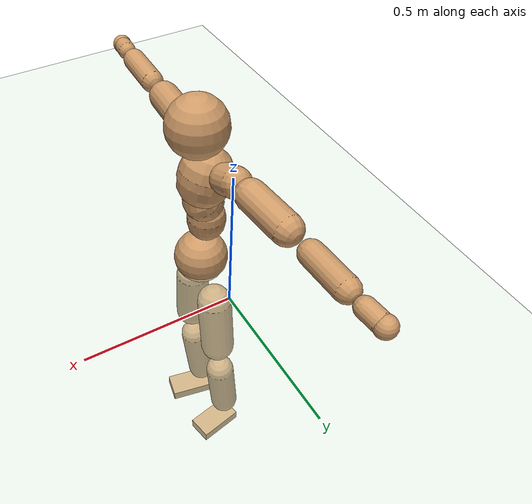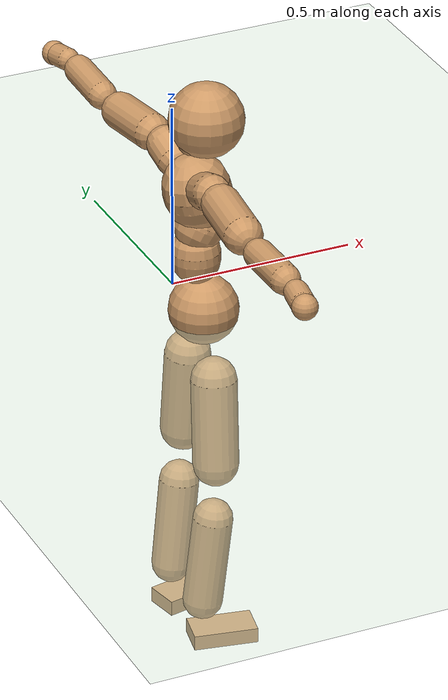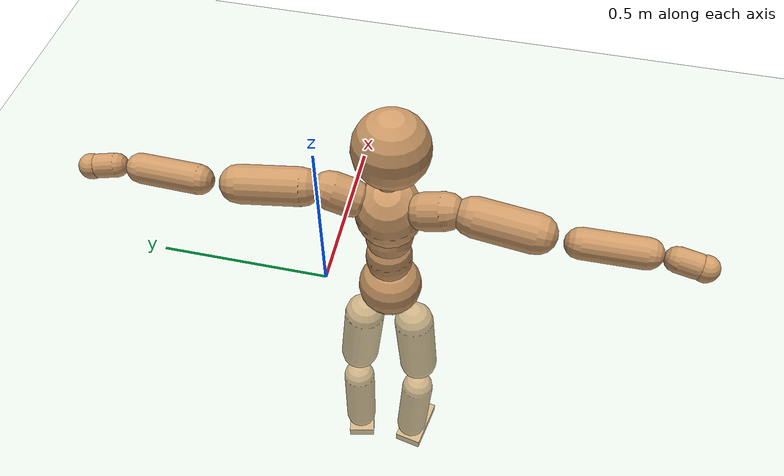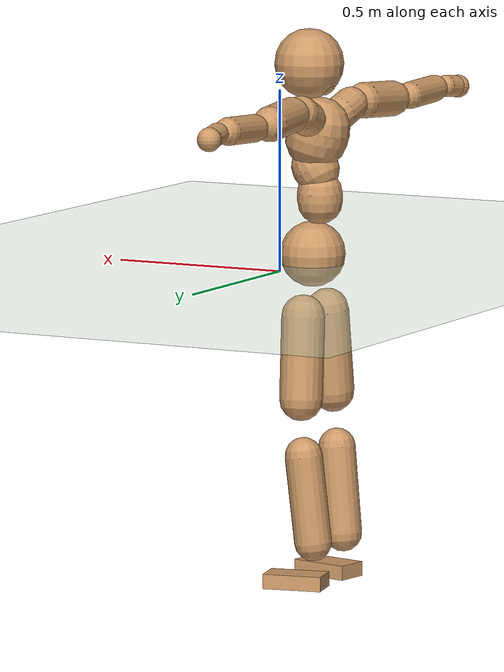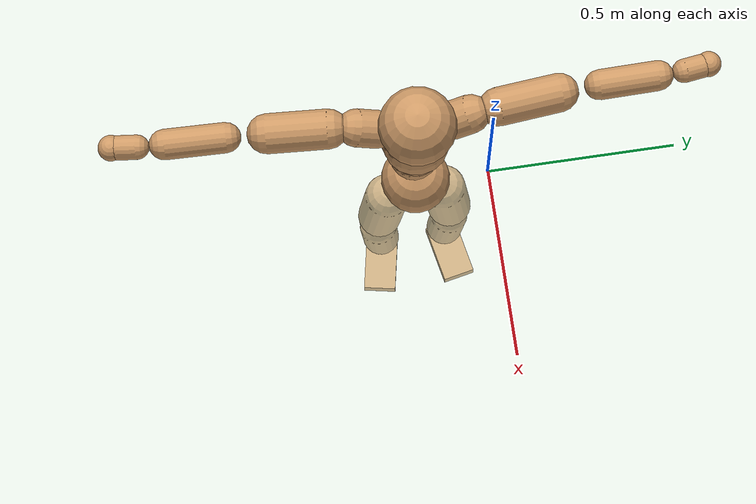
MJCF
<mujoco model="humanoid">
  <compiler coordinate="local"/>
  <default>
    <joint damping="0.0" armature="0.01" stiffness="0.0" limited="true"/>
    <geom conaffinity="1" condim="3" contype="7" margin="0.001" rgba="0.8 0.6 .4 1"/>
  </default>
  <asset>
    <texture type="skybox" builtin="gradient" rgb1=".4 .5 .6" rgb2="0 0 0" width="100" height="100"/>
    <texture builtin="flat" height="1278" mark="cross" markrgb="1 1 1" name="texgeom" random="0.01" rgb1="0.8 0.6 0.4" rgb2="0.8 0.6 0.4" type="cube" width="127"/>
    <texture builtin="checker" height="100" name="texplane" rgb1="0 0 0" rgb2="0.8 0.8 0.8" type="2d" width="100"/>
    <material name="MatPlane" reflectance="0.5" shininess="1" specular="1" texrepeat="60 60" texture="texplane"/>
    <material name="geom" texture="texgeom" texuniform="true"/>
  </asset>
  <worldbody>
    <light cutoff="100" diffuse="1 1 1" dir="-0 0 -1.3" directional="true" exponent="1" pos="0 0 1.3" specular=".1 .1 .1"/>
    <geom conaffinity="1" condim="3" name="floor" pos="0 0 0" rgba="0.8 0.9 0.8 1" size="100 100 .2" type="plane" material="MatPlane"/>
    <body name="Pelvis" pos="-0.0011 -0.1938 0.0262">
      <freejoint name="Pelvis"/>
      <geom type="sphere" contype="1" conaffinity="1" density="500" size="0.0913" pos="0.0000 0.0000 0.0000" name="Pelvis"/>
      <body name="L_Hip" pos="-0.0085 0.07 -0.0882">
        <joint name="L_Hip_x" type="hinge" pos="0 0 0" axis="1 0 0" stiffness="800" damping="80" armature="0.02" range="-180.0000 180.0000"/>
        <joint name="L_Hip_y" type="hinge" pos="0 0 0" axis="0 1 0" stiffness="800" damping="80" armature="0.02" range="-180.0000 180.0000"/>
        <joint name="L_Hip_z" type="hinge" pos="0 0 0" axis="0 0 1" stiffness="800" damping="80" armature="0.02" range="-180.0000 180.0000"/>
        <geom type="capsule" contype="1" conaffinity="1" density="500" fromto="-0.0013 0.0067 -0.0764 -0.0053 0.0267 -0.3054" size="0.0603" name="L_Hip"/>
        <body name="L_Knee" pos="-0.0066 0.0334 -0.3818">
          <joint name="L_Knee_x" type="hinge" pos="0 0 0" axis="1 0 0" stiffness="800" damping="80" armature="0.02" range="-180.0000 180.0000"/>
          <joint name="L_Knee_y" type="hinge" pos="0 0 0" axis="0 1 0" stiffness="800" damping="80" armature="0.02" range="-180.0000 180.0000"/>
          <joint name="L_Knee_z" type="hinge" pos="0 0 0" axis="0 0 1" stiffness="800" damping="80" armature="0.02" range="-180.0000 180.0000"/>
          <geom type="capsule" contype="1" conaffinity="1" density="500" fromto="-0.0088 -0.0023 -0.0809 -0.0350 -0.0094 -0.3237" size="0.052" name="L_Knee"/>
          <body name="L_Ankle" pos="-0.0438 -0.0117 -0.4046">
            <joint name="L_Ankle_x" type="hinge" pos="0 0 0" axis="1 0 0" stiffness="800" damping="80" armature="0.02" range="-180.0000 180.0000"/>
            <joint name="L_Ankle_y" type="hinge" pos="0 0 0" axis="0 1 0" stiffness="800" damping="80" armature="0.02" range="-180.0000 180.0000"/>
            <joint name="L_Ankle_z" type="hinge" pos="0 0 0" axis="0 0 1" stiffness="800" damping="80" armature="0.02" range="-180.0000 180.0000"/>
            <geom type="box" contype="1" conaffinity="1" density="500" pos="0.0581 0.0118 -0.0286" size="0.0831 0.0452 0.0206" quat="0.9950 0.0000 0.0000 0.0999" name="L_Ankle"/>
            <body name="L_Toe" pos="0.1162 0.0236 -0.0571">
              <joint name="L_Toe_x" type="hinge" pos="0 0 0" axis="1 0 0" stiffness="500" damping="50" armature="0.02" range="-180.0000 180.0000"/>
              <joint name="L_Toe_y" type="hinge" pos="0 0 0" axis="0 1 0" stiffness="500" damping="50" armature="0.02" range="-180.0000 180.0000"/>
              <joint name="L_Toe_z" type="hinge" pos="0 0 0" axis="0 0 1" stiffness="500" damping="50" armature="0.02" range="-180.0000 180.0000"/>
              <geom type="box" contype="1" conaffinity="1" density="500" pos="0.0000 0.0000 0.0278" size="0.0009 0.0023 0.001" quat="0.9943 0.0000 0.0000 0.1063" name="L_Toe"/>
            </body>
          </body>
        </body>
      </body>
      <body name="R_Hip" pos="-0.0047 -0.0682 -0.0876">
        <joint name="R_Hip_x" type="hinge" pos="0 0 0" axis="1 0 0" stiffness="800" damping="80" armature="0.02" range="-180.0000 180.0000"/>
        <joint name="R_Hip_y" type="hinge" pos="0 0 0" axis="0 1 0" stiffness="800" damping="80" armature="0.02" range="-180.0000 180.0000"/>
        <joint name="R_Hip_z" type="hinge" pos="0 0 0" axis="0 0 1" stiffness="800" damping="80" armature="0.02" range="-180.0000 180.0000"/>
        <geom type="capsule" contype="1" conaffinity="1" density="500" fromto="-0.0018 -0.0079 -0.0774 -0.0072 -0.0315 -0.3098" size="0.0596" name="R_Hip"/>
        <body name="R_Knee" pos="-0.0089 -0.0393 -0.3872">
          <joint name="R_Knee_x" type="hinge" pos="0 0 0" axis="1 0 0" stiffness="800" damping="80" armature="0.02" range="-180.0000 180.0000"/>
          <joint name="R_Knee_y" type="hinge" pos="0 0 0" axis="0 1 0" stiffness="800" damping="80" armature="0.02" range="-180.0000 180.0000"/>
          <joint name="R_Knee_z" type="hinge" pos="0 0 0" axis="0 0 1" stiffness="800" damping="80" armature="0.02" range="-180.0000 180.0000"/>
          <geom type="capsule" contype="1" conaffinity="1" density="500" fromto="-0.0084 0.0029 -0.0810 -0.0335 0.0116 -0.3238" size="0.0522" name="R_Knee"/>
          <body name="R_Ankle" pos="-0.0419 0.0145 -0.4048">
            <joint name="R_Ankle_x" type="hinge" pos="0 0 0" axis="1 0 0" stiffness="800" damping="80" armature="0.02" range="-180.0000 180.0000"/>
            <joint name="R_Ankle_y" type="hinge" pos="0 0 0" axis="0 1 0" stiffness="800" damping="80" armature="0.02" range="-180.0000 180.0000"/>
            <joint name="R_Ankle_z" type="hinge" pos="0 0 0" axis="0 0 1" stiffness="800" damping="80" armature="0.02" range="-180.0000 180.0000"/>
            <geom type="box" contype="1" conaffinity="1" density="500" pos="0.0599 -0.0115 -0.0241" size="0.0845 0.046 0.0203" quat="0.9955 0.0000 0.0000 -0.0948" name="R_Ankle"/>
            <body name="R_Toe" pos="0.1198 -0.023 -0.0483">
              <joint name="R_Toe_x" type="hinge" pos="0 0 0" axis="1 0 0" stiffness="500" damping="50" armature="0.02" range="-180.0000 180.0000"/>
              <joint name="R_Toe_y" type="hinge" pos="0 0 0" axis="0 1 0" stiffness="500" damping="50" armature="0.02" range="-180.0000 180.0000"/>
              <joint name="R_Toe_z" type="hinge" pos="0 0 0" axis="0 0 1" stiffness="500" damping="50" armature="0.02" range="-180.0000 180.0000"/>
              <geom type="box" contype="1" conaffinity="1" density="500" pos="0.0000 0.0000 0.0259" size="0.0009 0.0023 0.0011" quat="0.9963 0.0000 0.0000 -0.0854" name="R_Toe"/>
            </body>
          </body>
        </body>
      </body>
      <body name="Torso" pos="-0.021 -0.0022 0.1009">
        <joint name="Torso_x" type="hinge" pos="0 0 0" axis="1 0 0" stiffness="1000" damping="100" armature="0.02" range="-180.0000 180.0000"/>
        <joint name="Torso_y" type="hinge" pos="0 0 0" axis="0 1 0" stiffness="1000" damping="100" armature="0.02" range="-180.0000 180.0000"/>
        <joint name="Torso_z" type="hinge" pos="0 0 0" axis="0 0 1" stiffness="1000" damping="100" armature="0.02" range="-180.0000 180.0000"/>
        <geom type="capsule" contype="1" conaffinity="1" density="500" fromto="-0.0004 0.0018 0.0705 -0.0003 0.0012 0.0470" size="0.063426" name="Torso"/>
        <body name="Spine" pos="-0.0007 0.003 0.1175">
          <joint name="Spine_x" type="hinge" pos="0 0 0" axis="1 0 0" stiffness="1000" damping="100" armature="0.02" range="-180.0000 180.0000"/>
          <joint name="Spine_y" type="hinge" pos="0 0 0" axis="0 1 0" stiffness="1000" damping="100" armature="0.02" range="-180.0000 180.0000"/>
          <joint name="Spine_z" type="hinge" pos="0 0 0" axis="0 0 1" stiffness="1000" damping="100" armature="0.02" range="-180.0000 180.0000"/>
          <geom type="capsule" contype="1" conaffinity="1" density="500" fromto="0.0156 0.0013 0.0280 0.0104 0.0009 0.0187" size="0.064821" name="Spine"/>
          <body name="Chest" pos="0.026 0.0022 0.0467">
            <joint name="Chest_x" type="hinge" pos="0 0 0" axis="1 0 0" stiffness="1000" damping="100" armature="0.02" range="-180.0000 180.0000"/>
            <joint name="Chest_y" type="hinge" pos="0 0 0" axis="0 1 0" stiffness="1000" damping="100" armature="0.02" range="-180.0000 180.0000"/>
            <joint name="Chest_z" type="hinge" pos="0 0 0" axis="0 0 1" stiffness="1000" damping="100" armature="0.02" range="-180.0000 180.0000"/>
            <geom type="capsule" contype="1" conaffinity="1" density="500" fromto="-0.0243 -0.0009 0.0863 -0.0162 -0.0006 0.0575" size="0.086955" name="Chest"/>
            <body name="Neck" pos="-0.0452 -0.0028 0.203">
              <joint name="Neck_x" type="hinge" pos="0 0 0" axis="1 0 0" stiffness="500" damping="50" armature="0.02" range="-180.0000 180.0000"/>
              <joint name="Neck_y" type="hinge" pos="0 0 0" axis="0 1 0" stiffness="500" damping="50" armature="0.02" range="-180.0000 180.0000"/>
              <joint name="Neck_z" type="hinge" pos="0 0 0" axis="0 0 1" stiffness="500" damping="50" armature="0.02" range="-180.0000 180.0000"/>
              <geom type="capsule" contype="1" conaffinity="1" density="500" fromto="0.0101 0.0007 0.0123 0.0405 0.0026 0.0491" size="0.037851" name="Neck"/>
              <body name="Head" pos="0.0507 0.0033 0.0613">
                <joint name="Head_x" type="hinge" pos="0 0 0" axis="1 0 0" stiffness="500" damping="50" armature="0.02" range="-180.0000 180.0000"/>
                <joint name="Head_y" type="hinge" pos="0 0 0" axis="0 1 0" stiffness="500" damping="50" armature="0.02" range="-180.0000 180.0000"/>
                <joint name="Head_z" type="hinge" pos="0 0 0" axis="0 0 1" stiffness="500" damping="50" armature="0.02" range="-180.0000 180.0000"/>
                <geom type="sphere" contype="1" conaffinity="1" density="500" size="0.0972" pos="0.0000 0.0000 0.0000" name="Head"/>
              </body>
            </body>
            <body name="L_Thorax" pos="-0.0362 0.0745 0.115">
              <joint name="L_Thorax_x" type="hinge" pos="0 0 0" axis="1 0 0" stiffness="500" damping="50" armature="0.02" range="-180.0000 180.0000"/>
              <joint name="L_Thorax_y" type="hinge" pos="0 0 0" axis="0 1 0" stiffness="500" damping="50" armature="0.02" range="-180.0000 180.0000"/>
              <joint name="L_Thorax_z" type="hinge" pos="0 0 0" axis="0 0 1" stiffness="500" damping="50" armature="0.02" range="-180.0000 180.0000"/>
              <geom type="capsule" contype="1" conaffinity="1" density="500" fromto="-0.0015 0.0168 0.0066 -0.0060 0.0670 0.0263" size="0.049" name="L_Thorax"/>
              <body name="L_Shoulder" pos="-0.0075 0.0838 0.0329">
                <joint name="L_Shoulder_x" type="hinge" pos="0 0 0" axis="1 0 0" stiffness="500" damping="50" armature="0.02" range="-720.0000 720.0000"/>
                <joint name="L_Shoulder_y" type="hinge" pos="0 0 0" axis="0 1 0" stiffness="500" damping="50" armature="0.02" range="-720.0000 720.0000"/>
                <joint name="L_Shoulder_z" type="hinge" pos="0 0 0" axis="0 0 1" stiffness="500" damping="50" armature="0.02" range="-720.0000 720.0000"/>
                <geom type="capsule" contype="1" conaffinity="1" density="500" fromto="-0.0056 0.0523 -0.0028 -0.0224 0.2094 -0.0114" size="0.0489" name="L_Shoulder"/>
                <body name="L_Elbow" pos="-0.0281 0.2617 -0.0142">
                  <joint name="L_Elbow_x" type="hinge" pos="0 0 0" axis="1 0 0" stiffness="500" damping="50" armature="0.02" range="-720.0000 720.0000"/>
                  <joint name="L_Elbow_y" type="hinge" pos="0 0 0" axis="0 1 0" stiffness="500" damping="50" armature="0.02" range="-720.0000 720.0000"/>
                  <joint name="L_Elbow_z" type="hinge" pos="0 0 0" axis="0 0 1" stiffness="500" damping="50" armature="0.02" range="-720.0000 720.0000"/>
                  <geom type="capsule" contype="1" conaffinity="1" density="500" fromto="-0.0002 0.0495 0.0021 -0.0007 0.1979 0.0085" size="0.0381" name="L_Elbow"/>
                  <body name="L_Wrist" pos="-0.0008 0.2474 0.0106">
                    <joint name="L_Wrist_x" type="hinge" pos="0 0 0" axis="1 0 0" stiffness="300" damping="30" armature="0.02" range="-180.0000 180.0000"/>
                    <joint name="L_Wrist_y" type="hinge" pos="0 0 0" axis="0 1 0" stiffness="300" damping="30" armature="0.02" range="-180.0000 180.0000"/>
                    <joint name="L_Wrist_z" type="hinge" pos="0 0 0" axis="0 0 1" stiffness="300" damping="30" armature="0.02" range="-180.0000 180.0000"/>
                    <geom type="capsule" contype="1" conaffinity="1" density="500" fromto="-0.0027 0.0161 -0.0020 -0.0108 0.0643 -0.0079" size="0.0301" name="L_Wrist"/>
                    <body name="L_Hand" pos="-0.0135 0.0804 -0.0099">
                      <joint name="L_Hand_x" type="hinge" pos="0 0 0" axis="1 0 0" stiffness="300" damping="30" armature="0.02" range="-180.0000 180.0000"/>
                      <joint name="L_Hand_y" type="hinge" pos="0 0 0" axis="0 1 0" stiffness="300" damping="30" armature="0.02" range="-180.0000 180.0000"/>
                      <joint name="L_Hand_z" type="hinge" pos="0 0 0" axis="0 0 1" stiffness="300" damping="30" armature="0.02" range="-180.0000 180.0000"/>
                      <geom type="sphere" contype="1" conaffinity="1" density="500" size="0.0323" pos="0.0000 0.0000 0.0000" name="L_Hand"/>
                    </body>
                  </body>
                </body>
              </body>
            </body>
            <body name="R_Thorax" pos="-0.0401 -0.0764 0.1134">
              <joint name="R_Thorax_x" type="hinge" pos="0 0 0" axis="1 0 0" stiffness="500" damping="50" armature="0.02" range="-180.0000 180.0000"/>
              <joint name="R_Thorax_y" type="hinge" pos="0 0 0" axis="0 1 0" stiffness="500" damping="50" armature="0.02" range="-180.0000 180.0000"/>
              <joint name="R_Thorax_z" type="hinge" pos="0 0 0" axis="0 0 1" stiffness="500" damping="50" armature="0.02" range="-180.0000 180.0000"/>
              <geom type="capsule" contype="1" conaffinity="1" density="500" fromto="-0.0019 -0.0174 0.0068 -0.0075 -0.0695 0.0271" size="0.0481" name="R_Thorax"/>
              <body name="R_Shoulder" pos="-0.0093 -0.0869 0.0339">
                <joint name="R_Shoulder_x" type="hinge" pos="0 0 0" axis="1 0 0" stiffness="500" damping="50" armature="0.02" range="-720.0000 720.0000"/>
                <joint name="R_Shoulder_y" type="hinge" pos="0 0 0" axis="0 1 0" stiffness="500" damping="50" armature="0.02" range="-720.0000 720.0000"/>
                <joint name="R_Shoulder_z" type="hinge" pos="0 0 0" axis="0 0 1" stiffness="500" damping="50" armature="0.02" range="-720.0000 720.0000"/>
                <geom type="capsule" contype="1" conaffinity="1" density="500" fromto="-0.0041 -0.0508 -0.0029 -0.0164 -0.2033 -0.0116" size="0.0504" name="R_Shoulder"/>
                <body name="R_Elbow" pos="-0.0206 -0.2541 -0.0146">
                  <joint name="R_Elbow_x" type="hinge" pos="0 0 0" axis="1 0 0" stiffness="500" damping="50" armature="0.02" range="-720.0000 720.0000"/>
                  <joint name="R_Elbow_y" type="hinge" pos="0 0 0" axis="0 1 0" stiffness="500" damping="50" armature="0.02" range="-720.0000 720.0000"/>
                  <joint name="R_Elbow_z" type="hinge" pos="0 0 0" axis="0 0 1" stiffness="500" damping="50" armature="0.02" range="-720.0000 720.0000"/>
                  <geom type="capsule" contype="1" conaffinity="1" density="500" fromto="-0.0009 -0.0509 0.0020 -0.0035 -0.2037 0.0078" size="0.0384" name="R_Elbow"/>
                  <body name="R_Wrist" pos="-0.0043 -0.2546 0.0098">
                    <joint name="R_Wrist_x" type="hinge" pos="0 0 0" axis="1 0 0" stiffness="300" damping="30" armature="0.02" range="-180.0000 180.0000"/>
                    <joint name="R_Wrist_y" type="hinge" pos="0 0 0" axis="0 1 0" stiffness="300" damping="30" armature="0.02" range="-180.0000 180.0000"/>
                    <joint name="R_Wrist_z" type="hinge" pos="0 0 0" axis="0 0 1" stiffness="300" damping="30" armature="0.02" range="-180.0000 180.0000"/>
                    <geom type="capsule" contype="1" conaffinity="1" density="500" fromto="-0.0021 -0.0163 -0.0015 -0.0085 -0.0650 -0.0059" size="0.031" name="R_Wrist"/>
                    <body name="R_Hand" pos="-0.0106 -0.0813 -0.0074">
                      <joint name="R_Hand_x" type="hinge" pos="0 0 0" axis="1 0 0" stiffness="300" damping="30" armature="0.02" range="-180.0000 180.0000"/>
                      <joint name="R_Hand_y" type="hinge" pos="0 0 0" axis="0 1 0" stiffness="300" damping="30" armature="0.02" range="-180.0000 180.0000"/>
                      <joint name="R_Hand_z" type="hinge" pos="0 0 0" axis="0 0 1" stiffness="300" damping="30" armature="0.02" range="-180.0000 180.0000"/>
                      <geom type="sphere" contype="1" conaffinity="1" density="500" size="0.0326" pos="0.0000 0.0000 0.0000" name="R_Hand"/>
                    </body>
                  </body>
                </body>
              </body>
            </body>
          </body>
        </body>
      </body>
    </body>
  </worldbody>
  <actuator>
    <motor name="L_Hip_x" joint="L_Hip_x" gear="500"/>
    <motor name="L_Hip_y" joint="L_Hip_y" gear="500"/>
    <motor name="L_Hip_z" joint="L_Hip_z" gear="500"/>
    <motor name="L_Knee_x" joint="L_Knee_x" gear="500"/>
    <motor name="L_Knee_y" joint="L_Knee_y" gear="500"/>
    <motor name="L_Knee_z" joint="L_Knee_z" gear="500"/>
    <motor name="L_Ankle_x" joint="L_Ankle_x" gear="500"/>
    <motor name="L_Ankle_y" joint="L_Ankle_y" gear="500"/>
    <motor name="L_Ankle_z" joint="L_Ankle_z" gear="500"/>
    <motor name="L_Toe_x" joint="L_Toe_x" gear="500"/>
    <motor name="L_Toe_y" joint="L_Toe_y" gear="500"/>
    <motor name="L_Toe_z" joint="L_Toe_z" gear="500"/>
    <motor name="R_Hip_x" joint="R_Hip_x" gear="500"/>
    <motor name="R_Hip_y" joint="R_Hip_y" gear="500"/>
    <motor name="R_Hip_z" joint="R_Hip_z" gear="500"/>
    <motor name="R_Knee_x" joint="R_Knee_x" gear="500"/>
    <motor name="R_Knee_y" joint="R_Knee_y" gear="500"/>
    <motor name="R_Knee_z" joint="R_Knee_z" gear="500"/>
    <motor name="R_Ankle_x" joint="R_Ankle_x" gear="500"/>
    <motor name="R_Ankle_y" joint="R_Ankle_y" gear="500"/>
    <motor name="R_Ankle_z" joint="R_Ankle_z" gear="500"/>
    <motor name="R_Toe_x" joint="R_Toe_x" gear="500"/>
    <motor name="R_Toe_y" joint="R_Toe_y" gear="500"/>
    <motor name="R_Toe_z" joint="R_Toe_z" gear="500"/>
    <motor name="Torso_x" joint="Torso_x" gear="500"/>
    <motor name="Torso_y" joint="Torso_y" gear="500"/>
    <motor name="Torso_z" joint="Torso_z" gear="500"/>
    <motor name="Spine_x" joint="Spine_x" gear="500"/>
    <motor name="Spine_y" joint="Spine_y" gear="500"/>
    <motor name="Spine_z" joint="Spine_z" gear="500"/>
    <motor name="Chest_x" joint="Chest_x" gear="500"/>
    <motor name="Chest_y" joint="Chest_y" gear="500"/>
    <motor name="Chest_z" joint="Chest_z" gear="500"/>
    <motor name="Neck_x" joint="Neck_x" gear="500"/>
    <motor name="Neck_y" joint="Neck_y" gear="500"/>
    <motor name="Neck_z" joint="Neck_z" gear="500"/>
    <motor name="Head_x" joint="Head_x" gear="500"/>
    <motor name="Head_y" joint="Head_y" gear="500"/>
    <motor name="Head_z" joint="Head_z" gear="500"/>
    <motor name="L_Thorax_x" joint="L_Thorax_x" gear="500"/>
    <motor name="L_Thorax_y" joint="L_Thorax_y" gear="500"/>
    <motor name="L_Thorax_z" joint="L_Thorax_z" gear="500"/>
    <motor name="L_Shoulder_x" joint="L_Shoulder_x" gear="500"/>
    <motor name="L_Shoulder_y" joint="L_Shoulder_y" gear="500"/>
    <motor name="L_Shoulder_z" joint="L_Shoulder_z" gear="500"/>
    <motor name="L_Elbow_x" joint="L_Elbow_x" gear="500"/>
    <motor name="L_Elbow_y" joint="L_Elbow_y" gear="500"/>
    <motor name="L_Elbow_z" joint="L_Elbow_z" gear="500"/>
    <motor name="L_Wrist_x" joint="L_Wrist_x" gear="500"/>
    <motor name="L_Wrist_y" joint="L_Wrist_y" gear="500"/>
    <motor name="L_Wrist_z" joint="L_Wrist_z" gear="500"/>
    <motor name="L_Hand_x" joint="L_Hand_x" gear="500"/>
    <motor name="L_Hand_y" joint="L_Hand_y" gear="500"/>
    <motor name="L_Hand_z" joint="L_Hand_z" gear="500"/>
    <motor name="R_Thorax_x" joint="R_Thorax_x" gear="500"/>
    <motor name="R_Thorax_y" joint="R_Thorax_y" gear="500"/>
    <motor name="R_Thorax_z" joint="R_Thorax_z" gear="500"/>
    <motor name="R_Shoulder_x" joint="R_Shoulder_x" gear="500"/>
    <motor name="R_Shoulder_y" joint="R_Shoulder_y" gear="500"/>
    <motor name="R_Shoulder_z" joint="R_Shoulder_z" gear="500"/>
    <motor name="R_Elbow_x" joint="R_Elbow_x" gear="500"/>
    <motor name="R_Elbow_y" joint="R_Elbow_y" gear="500"/>
    <motor name="R_Elbow_z" joint="R_Elbow_z" gear="500"/>
    <motor name="R_Wrist_x" joint="R_Wrist_x" gear="500"/>
    <motor name="R_Wrist_y" joint="R_Wrist_y" gear="500"/>
    <motor name="R_Wrist_z" joint="R_Wrist_z" gear="500"/>
    <motor name="R_Hand_x" joint="R_Hand_x" gear="500"/>
    <motor name="R_Hand_y" joint="R_Hand_y" gear="500"/>
    <motor name="R_Hand_z" joint="R_Hand_z" gear="500"/>
  </actuator>
  <contact>
    <exclude body1="Torso" body2="Chest"/>
    <exclude body1="Head" body2="Chest"/>
    <exclude body1="R_Knee" body2="R_Toe"/>
    <exclude body1="R_Knee" body2="L_Ankle"/>
    <exclude body1="R_Knee" body2="L_Toe"/>
    <exclude body1="L_Knee" body2="L_Toe"/>
    <exclude body1="L_Knee" body2="R_Ankle"/>
    <exclude body1="L_Knee" body2="R_Toe"/>
    <exclude body1="L_Shoulder" body2="Chest"/>
    <exclude body1="R_Shoulder" body2="Chest"/>
  </contact>
  <sensor/>
  <size njmax="700" nconmax="700"/>
</mujoco>
